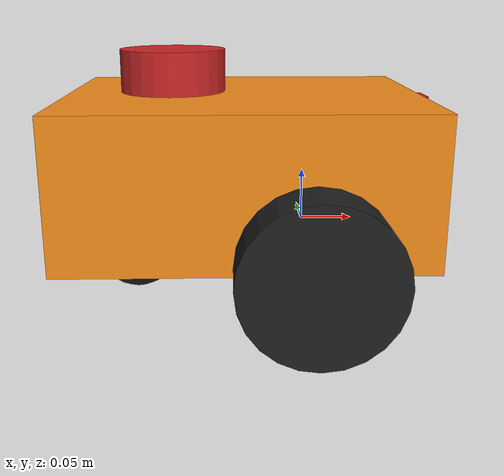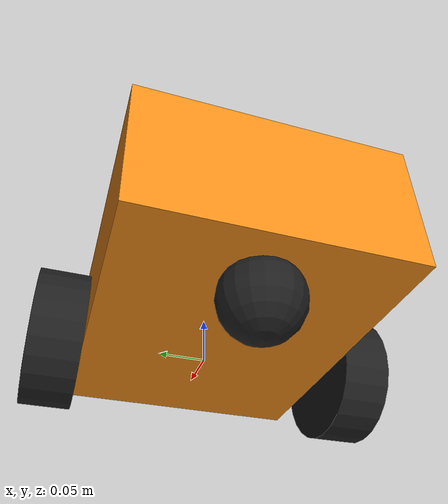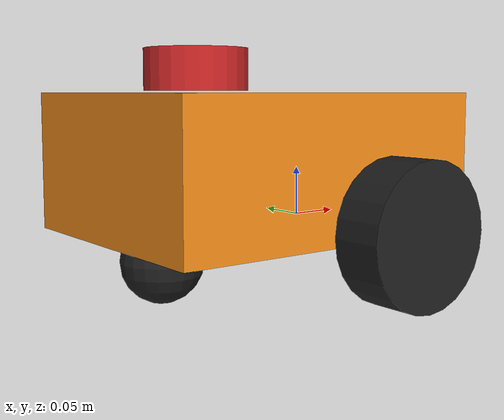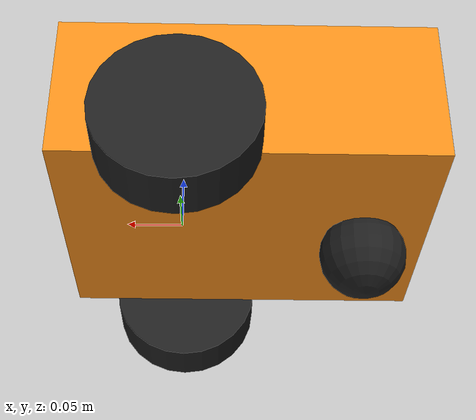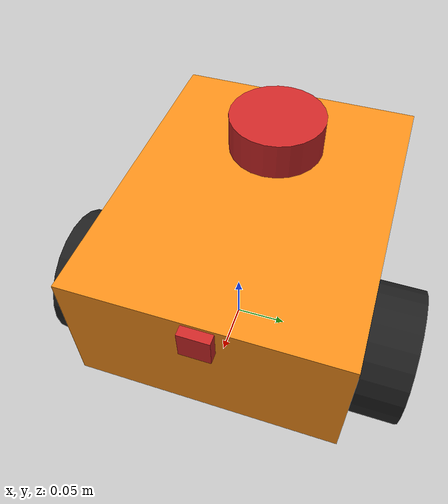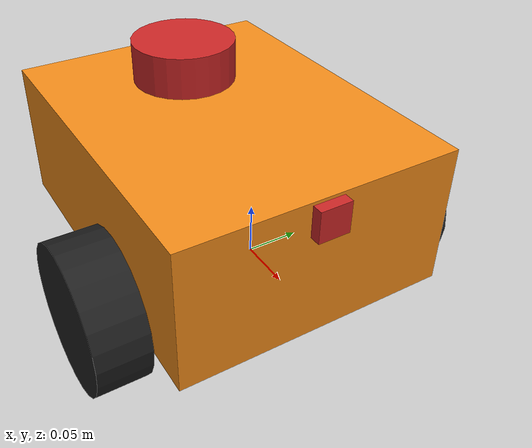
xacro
<?xml version="1.0"?>
<robot xmlns:xacro="http://www.ros.org/wiki/xacro" name="my_robot">

        <xacro:arg name="use_ros2_control" default="false"/>

        <xacro:include filename="robot_core.xacro"/>
        <xacro:if value ="$(arg use_ros2_control)">
                <xacro:include filename="ros2_control.xacro"/>
        </xacro:if>
        <xacro:unless value="$(arg use_ros2_control)">
                <xacro:include filename="gazebo_control.xacro"/>
        </xacro:unless>
        <xacro:include filename="lidar.xacro"/>
        <xacro:include filename="camera.xacro"/>
</robot>

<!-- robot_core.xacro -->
<robot xmlns:xacro="http://www.ros.org/wiki/xacro">
    <!--Included Files-->
    <xacro:include filename="colours.xacro"/>
    <xacro:include filename="inertial_macros.xacro" />

    <!--Defining Robot Contants-->

    <xacro:property name="chassis_length" value="0.335"/>
    <xacro:property name="chassis_width" value="0.265"/>
    <xacro:property name="chassis_height" value="0.138"/>
    <xacro:property name="chassis_mass" value="1.0"/>
    <xacro:property name="wheel_radius" value="0.07"/>
    <xacro:property name="wheel_thickness" value="0.05"/>
    <xacro:property name="wheel_mass" value="0.05"/>
    <xacro:property name="wheel_offset_x" value="0.226"/>
    <xacro:property name="wheel_offset_y" value="0.16"/>
    <xacro:property name="wheel_offset_z" value="0.01"/>
    <xacro:property name="caster_wheel_radius" value="0.04"/>
    <xacro:property name="caster_wheel_mass" value="0.01"/>
    <xacro:property name="caster_wheel_offset_x" value="0.06"/>
    <xacro:property name="caster_wheel_offset_z" value="${wheel_offset_z - wheel_radius + caster_wheel_radius}"/>

    <!--Base Link-->
    <link name="base_link">

    </link>

    <!-- Base_footprint Link -->

    <joint name="base_footprint_joint" type="fixed">
        <parent link="base_link"/>
        <child link="base_footprint"/>
        <origin xyz="0 0 0" rpy="0 0 0"/>
    </joint>

    <link name="base_footprint">
    </link>

    <!--Chassis Link-->
    <joint name="chassis_joint" type="fixed">
        <parent link="base_link"/>
        <child link="chassis"/>
        <origin xyz="${-wheel_offset_x} 0 ${-wheel_offset_z}"/>
    </joint>

    <link name="chassis">
        <visual>
            <origin xyz="${chassis_length/2} 0 ${chassis_height/2}"/>
            <geometry>
                <box size="${chassis_length} ${chassis_width} ${chassis_height}"/>
            </geometry>
            <material name="orange"/>
        </visual>
        <collision>
            <origin xyz="${chassis_length/2} 0 ${chassis_height/2}"/>
            <geometry>
                <box size="${chassis_length} ${chassis_width} ${chassis_height}"/>
            </geometry>
        </collision>
        <xacro:inertial_box mass="0.5" x="${chassis_length}" y="${chassis_width}" z="${chassis_height}">
            <origin xyz="${chassis_length/2} 0 ${chassis_height/2}" rpy="0 0 0"/>
        </xacro:inertial_box>
    </link>

    <gazebo reference="chassis">
        <material>Gazebo/Orange</material>
    </gazebo>

    <!--Left Wheel-->
    <joint name="left_wheel_joint" type="continuous">
        <parent link="base_link"/>
        <child link="left_wheel"/>
        <origin xyz="0 ${wheel_offset_y} 0" rpy="${-pi/2} 0 0" />
        <axis xyz="0 0 1"/>
    </joint>

    <link name="left_wheel">
        <visual>
            <geometry>
                <cylinder radius="${wheel_radius}" length="${wheel_thickness}"/>
            </geometry>
            <material name="black"/>
        </visual>
        <collision>
            <geometry>
                <sphere radius="${wheel_radius}"/>
            </geometry>
        </collision>
        <xacro:inertial_cylinder mass="${wheel_mass}" length="${wheel_thickness}" radius="${wheel_radius}">
            <origin xyz="0 0 0" rpy="0 0 0"/>
        </xacro:inertial_cylinder>
    </link>

    <gazebo reference="left_wheel">
        <material>Gazebo/Black</material>
    </gazebo>

    <!--Right Wheel-->

    <joint name="right_wheel_joint" type="continuous">
        <parent link="base_link"/>
        <child link="right_wheel"/>
        <origin xyz="0 ${-wheel_offset_y} 0" rpy="${pi/2} 0 0" />
        <axis xyz="0 0 -1"/>
    </joint>

    <link name="right_wheel">
        <visual>
            <geometry>
                <cylinder radius="${wheel_radius}" length="${wheel_thickness}"/>
            </geometry>
            <material name="black"/>
        </visual>
        <collision>
            <geometry>
                <sphere radius="${wheel_radius}"/>
            </geometry>
        </collision>
        <xacro:inertial_cylinder mass="${wheel_mass}" length="${wheel_thickness}" radius="${wheel_radius}">
            <origin xyz="0 0 0" rpy="0 0 0"/>
        </xacro:inertial_cylinder>
    </link>

    <gazebo reference="right_wheel">
        <material>Gazebo/Black</material>
    </gazebo>

    <!--Caster Wheel-->

    <joint name="caster_wheel_joint" type="fixed">
        <parent link="chassis"/>
        <child link="caster_wheel"/>
        <origin xyz="${caster_wheel_offset_x} 0 ${caster_wheel_offset_z}"/>
    </joint>

    <link name="caster_wheel">
        <visual>
            <geometry>
                <sphere radius="${caster_wheel_radius}"/>
            </geometry>
            <material name="black"/>
        </visual>
        <collision>
            <geometry>
                <sphere radius="${caster_wheel_radius}"/>
            </geometry>
        </collision>
        <xacro:inertial_sphere mass="${caster_wheel_mass}" radius="${caster_wheel_radius}">
            <origin xyz="0 0 0" rpy="0 0 0"/>
        </xacro:inertial_sphere>
    </link>

    <gazebo reference="caster_wheel">
        <material>Gazebo/Black</material>
        <mu1 value="0.001"/>
        <mu2 value="0.001"/>
    </gazebo>
</robot>

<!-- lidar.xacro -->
<robot xmlns:xacro="http://www.ros.org/wiki/xacro">

    <joint name="laser_joint" type="fixed">
        <parent link="chassis"/>
        <child link="laser_frame"/>
        <origin xyz="0.1 0 0.16" rpy="0 0 0"/>
    </joint>

    <link name="laser_frame">
        <visual>
            <geometry>
                <cylinder radius="0.05" length="0.04"/>
            </geometry>
            <material name="red"/>
        </visual>
        <collision>
            <xacro:inertial_cylinder mass="0.1" length="0.04" radius="0.05">
                <origin xyz="0 0 0" rpy="0 0 0"/>
            </xacro:inertial_cylinder>
        </collision>
    </link>

    <gazebo reference="laser_frame">
        <material>Gazebo/Red</material>

    <sensor name="laser" type="ray">
    <pose> 0 0 0 0 0 0 </pose>
    <visualize>true</visualize>
    <update_rate>10</update_rate>
    <ray>
        <scan>
        <horizontal>
            <samples>360</samples>
            <min_angle>-3.14</min_angle>
            <max_angle>3.14</max_angle>
        </horizontal>
    </scan>
    <range>
        <min>0.3</min>
        <max>12</max>
    </range>
    </ray>
    <plugin name="laser_controller" filename="libgazebo_ros_ray_sensor.so">
         <ros>
            <argument>~/out:=scan</argument>
        </ros>
        <output_type>sensor_msgs/LaserScan</output_type>
        <frame_name>laser_frame</frame_name>
    </plugin>
    </sensor>
    </gazebo>
</robot>

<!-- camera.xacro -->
<robot xmlns:xacro="http://www.ros.org/wiki/xacro">
    <joint name="camera_joint" type="fixed">
        <parent link="chassis"/>
        <child link="camera_link"/>
        <origin xyz="0.34 0 0.12" rpy="0 0 0"/>
    </joint>

    <link name="camera_link">
    <visual>
        <geometry>
            <box size="0.010 0.03 0.03"/>
        </geometry>
        <material name="red"/>
    </visual>
    </link>

    <gazebo reference="camera_link">
    <material>Gazebo/Red</material>

    <sensor name="camera" type="camera">
    <pose> 0 0 0 0 0 0 </pose>
    <visualize>true</visualize>
    <update_rate>10</update_rate>
    <camera>
    <horizontal_fov>1.089</horizontal_fov>
    <image>
        <format>R8G8B8</format>
        <width>540</width>
        <height>380</height>
    </image>
    <clip>
        <near>0.05</near>
        <far>8.0</far>
    </clip>
</camera>
    <plugin name="camera_controller" filename="libgazebo_ros_camera.so">
    <frame_name>camera_link_optical</frame_name>
    </plugin>
</sensor>
    </gazebo>

    <joint name="camera_optical_joint" type="fixed">
    <origin xyz="0 0 0" rpy="${-pi/2} 0 ${-pi/2}" />
    <parent link="camera_link" />
    <child link="camera_link_optical" />
</joint>

<link name="camera_link_optical"></link>

</robot>
